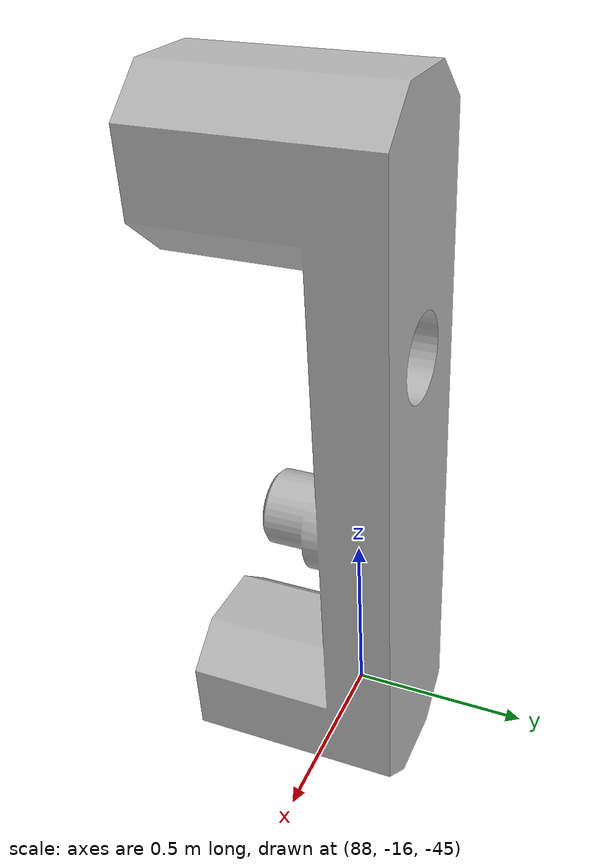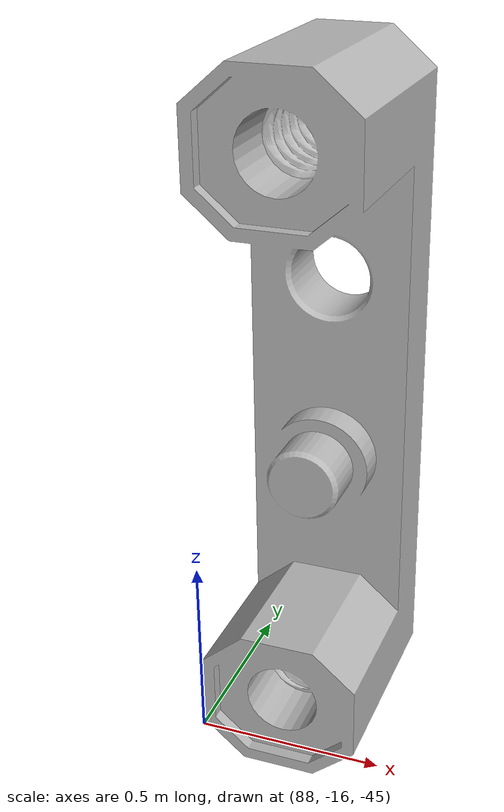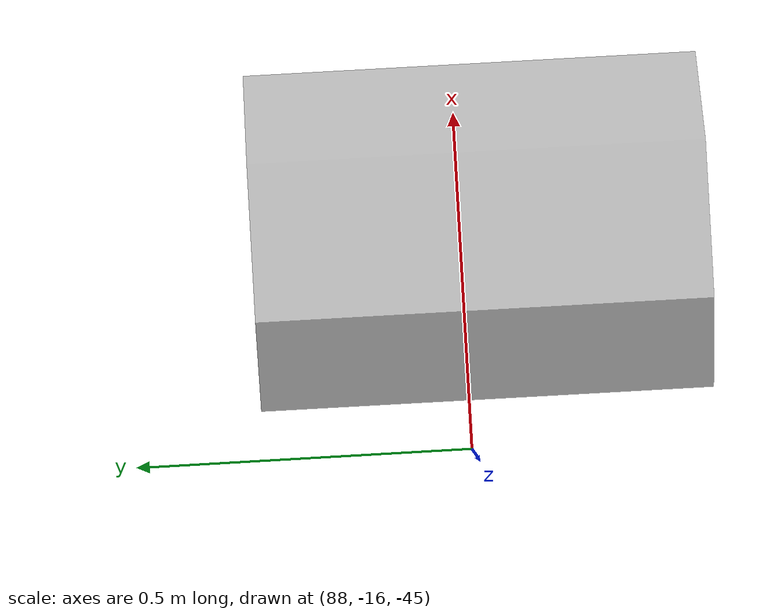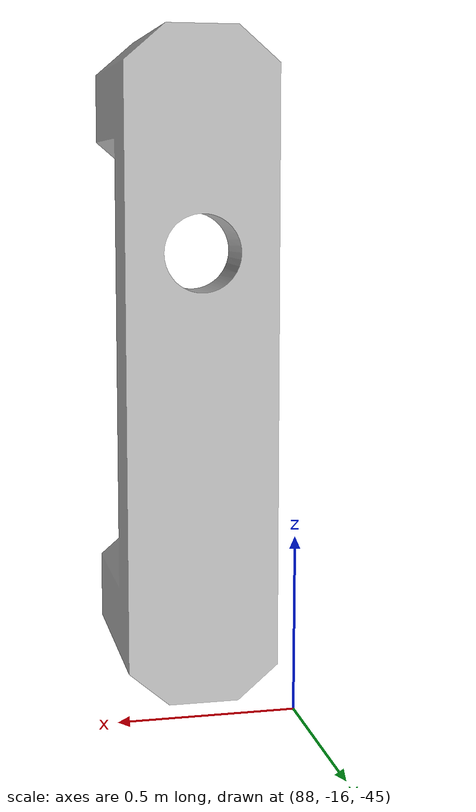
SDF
<?xml version='1.0'?>
<sdf version='1.6'>
  <model name="kit">
     <static>true</static>
           <link name='link'>
            <collision name='collision'>
              <geometry>
               <mesh>
		  <uri>models://gearBox/meshes/gearBoxBottom_v1.stl</uri>

               </mesh>
              </geometry>
            </collision>

           <visual name='visual'>
             <geometry>
               <mesh>
		  <uri>models://gearBox/meshes/gearBoxBottom_v1.stl</uri>

               </mesh>
             </geometry>
            </visual>
          </link>

  </model>
</sdf>
